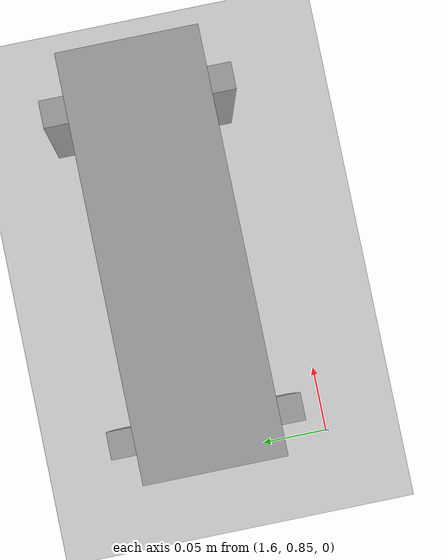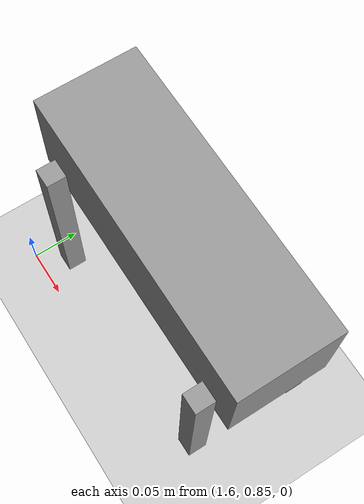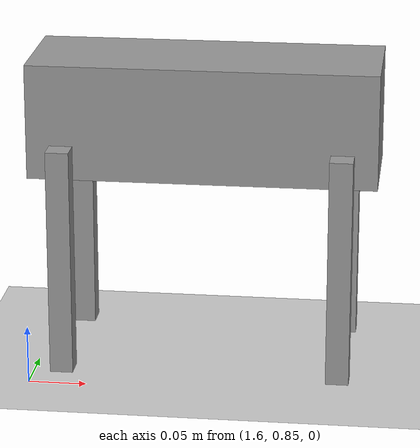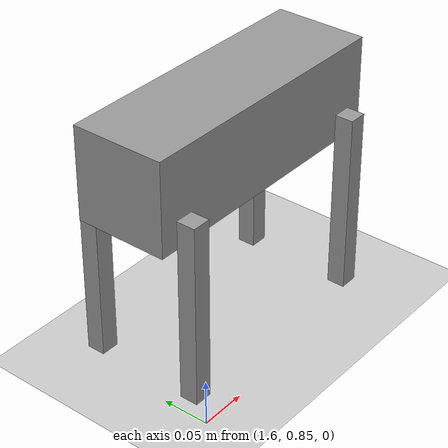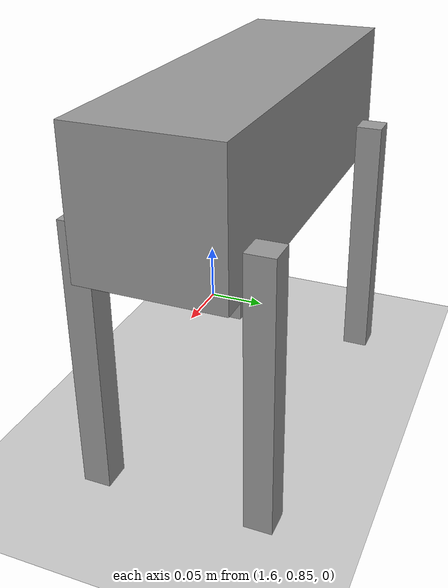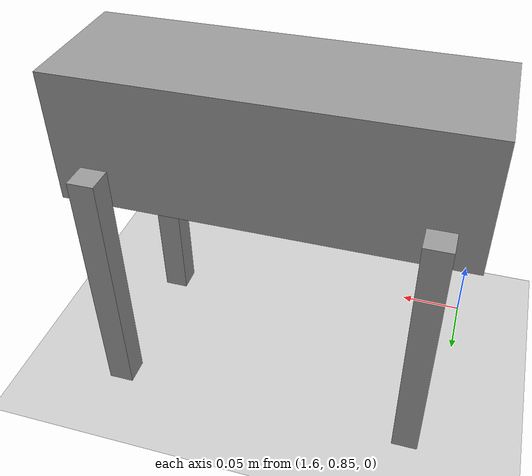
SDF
<sdf version="1.6">
 <world name="default">
  <model name="ground_plane">
   <static>1</static>
   <link name="link">
    <collision name="collision">
     <geometry><plane><normal>0 0 1</normal><size>100 100</size></plane></geometry>
     <surface>
      <contact><collide_bitmask>65535</collide_bitmask></contact>
      <friction><ode><mu>100</mu><mu2>50</mu2></ode></friction>
     </surface>
    </collision>
    <visual name="visual">
     <cast_shadows>0</cast_shadows>
     <geometry><plane><normal>0 0 1</normal><size>100 100</size></plane></geometry>
     <material>
      <script><uri>file://media/materials/scripts/gazebo.material</uri><name>Gazebo/Grey</name></script>
     </material>
    </visual>
   </link>
  </model>
  <model name="robot-dog_clone">
   <link name="link_1">
    <pose>-2.67488 -4.128 0.54 0 -0 0</pose>
    <inertial>
     <mass>1</mass>
     <inertia>
      <ixx>0.166667</ixx>
      <ixy>0</ixy>
      <ixz>0</ixz>
      <iyy>0.166667</iyy>
      <iyz>0</iyz>
      <izz>0.166667</izz>
     </inertia>
    </inertial>
    <visual name="visual">
     <geometry><box><size>0.3 0.1 0.1</size></box></geometry>
     <material>
      <lighting>1</lighting>
      <script><uri>file://media/materials/scripts/gazebo.material</uri><name>Gazebo/Grey</name></script>
      <shader type="pixel"><normal_map>__default__</normal_map></shader>
      <ambient>0.3 0.3 0.3 1</ambient>
      <diffuse>0.7 0.7 0.7 1</diffuse>
      <specular>0.01 0.01 0.01 1</specular>
      <emissive>0 0 0 1</emissive>
     </material>
    </visual>
    <collision name="collision">
     <geometry><box><size>0.3 0.1 0.1</size></box></geometry>
     <surface>
      <friction>
       <ode><mu>1</mu><mu2>1</mu2><fdir1>0 0 0</fdir1><slip1>0</slip1><slip2>0</slip2></ode>
       <torsional>
        <coefficient>1</coefficient>
        <patch_radius>0</patch_radius>
        <surface_radius>0</surface_radius>
        <use_patch_radius>1</use_patch_radius>
        <ode><slip>0</slip></ode>
       </torsional>
      </friction>
      <bounce><restitution_coefficient>0</restitution_coefficient><threshold>1e+06</threshold></bounce>
      <contact>
       <collide_without_contact>0</collide_without_contact>
       <collide_without_contact_bitmask>1</collide_without_contact_bitmask>
       <collide_bitmask>1</collide_bitmask>
       <ode>
        <soft_cfm>0</soft_cfm>
        <soft_erp>0.2</soft_erp>
        <kp>1e+13</kp>
        <kd>1</kd>
        <max_vel>0.01</max_vel>
        <min_depth>0</min_depth>
       </ode>
       <bullet>
        <split_impulse>1</split_impulse>
        <split_impulse_penetration_threshold>-0.01</split_impulse_penetration_threshold>
        <soft_cfm>0</soft_cfm>
        <soft_erp>0.2</soft_erp>
        <kp>1e+13</kp>
        <kd>1</kd>
       </bullet>
      </contact>
     </surface>
    </collision>
   </link>
   <link name="link_2">
    <pose>-2.55488 -4.068 0.42 3.14159 1.57079 3.14159</pose>
    <inertial>
     <mass>1</mass>
     <inertia>
      <ixx>0.166667</ixx>
      <ixy>0</ixy>
      <ixz>0</ixz>
      <iyy>0.166667</iyy>
      <iyz>0</iyz>
      <izz>0.166667</izz>
     </inertia>
    </inertial>
    <visual name="visual">
     <geometry><box><size>0.2 0.02 0.02</size></box></geometry>
     <material>
      <lighting>1</lighting>
      <script><uri>file://media/materials/scripts/gazebo.material</uri><name>Gazebo/Grey</name></script>
      <shader type="pixel"><normal_map>__default__</normal_map></shader>
      <ambient>0.3 0.3 0.3 1</ambient>
      <diffuse>0.7 0.7 0.7 1</diffuse>
      <specular>0.01 0.01 0.01 1</specular>
      <emissive>0 0 0 1</emissive>
     </material>
    </visual>
    <collision name="collision">
     <geometry><box><size>0.2 0.02 0.02</size></box></geometry>
     <surface>
      <friction>
       <ode><mu>1</mu><mu2>1</mu2><fdir1>0 0 0</fdir1><slip1>0</slip1><slip2>0</slip2></ode>
       <torsional>
        <coefficient>1</coefficient>
        <patch_radius>0</patch_radius>
        <surface_radius>0</surface_radius>
        <use_patch_radius>1</use_patch_radius>
        <ode><slip>0</slip></ode>
       </torsional>
      </friction>
      <bounce><restitution_coefficient>0</restitution_coefficient><threshold>1e+06</threshold></bounce>
      <contact>
       <collide_without_contact>0</collide_without_contact>
       <collide_without_contact_bitmask>1</collide_without_contact_bitmask>
       <collide_bitmask>1</collide_bitmask>
       <ode>
        <soft_cfm>0</soft_cfm>
        <soft_erp>0.2</soft_erp>
        <kp>1e+13</kp>
        <kd>1</kd>
        <max_vel>0.01</max_vel>
        <min_depth>0</min_depth>
       </ode>
       <bullet>
        <split_impulse>1</split_impulse>
        <split_impulse_penetration_threshold>-0.01</split_impulse_penetration_threshold>
        <soft_cfm>0</soft_cfm>
        <soft_erp>0.2</soft_erp>
        <kp>1e+13</kp>
        <kd>1</kd>
       </bullet>
      </contact>
     </surface>
    </collision>
   </link>
   <link name="link_2_clone">
    <pose>-2.79488 -4.068 0.42 3.14159 1.57079 3.14159</pose>
    <inertial>
     <mass>1</mass>
     <inertia>
      <ixx>0.166667</ixx>
      <ixy>0</ixy>
      <ixz>0</ixz>
      <iyy>0.166667</iyy>
      <iyz>0</iyz>
      <izz>0.166667</izz>
     </inertia>
    </inertial>
    <visual name="visual">
     <geometry><box><size>0.2 0.02 0.02</size></box></geometry>
     <material>
      <lighting>1</lighting>
      <script><uri>file://media/materials/scripts/gazebo.material</uri><name>Gazebo/Grey</name></script>
      <shader type="pixel"><normal_map>__default__</normal_map></shader>
      <ambient>0.3 0.3 0.3 1</ambient>
      <diffuse>0.7 0.7 0.7 1</diffuse>
      <specular>0.01 0.01 0.01 1</specular>
      <emissive>0 0 0 1</emissive>
     </material>
    </visual>
    <collision name="collision">
     <geometry><box><size>0.2 0.02 0.02</size></box></geometry>
     <surface>
      <friction>
       <ode><mu>1</mu><mu2>1</mu2><fdir1>0 0 0</fdir1><slip1>0</slip1><slip2>0</slip2></ode>
       <torsional>
        <coefficient>1</coefficient>
        <patch_radius>0</patch_radius>
        <surface_radius>0</surface_radius>
        <use_patch_radius>1</use_patch_radius>
        <ode><slip>0</slip></ode>
       </torsional>
      </friction>
      <bounce><restitution_coefficient>0</restitution_coefficient><threshold>1e+06</threshold></bounce>
      <contact>
       <collide_without_contact>0</collide_without_contact>
       <collide_without_contact_bitmask>1</collide_without_contact_bitmask>
       <collide_bitmask>1</collide_bitmask>
       <ode>
        <soft_cfm>0</soft_cfm>
        <soft_erp>0.2</soft_erp>
        <kp>1e+13</kp>
        <kd>1</kd>
        <max_vel>0.01</max_vel>
        <min_depth>0</min_depth>
       </ode>
       <bullet>
        <split_impulse>1</split_impulse>
        <split_impulse_penetration_threshold>-0.01</split_impulse_penetration_threshold>
        <soft_cfm>0</soft_cfm>
        <soft_erp>0.2</soft_erp>
        <kp>1e+13</kp>
        <kd>1</kd>
       </bullet>
      </contact>
     </surface>
    </collision>
   </link>
   <link name="link_2_clone_0">
    <pose>-2.55488 -4.188 0.42 0 1.57079 0</pose>
    <inertial>
     <mass>1</mass>
     <inertia>
      <ixx>0.166667</ixx>
      <ixy>0</ixy>
      <ixz>0</ixz>
      <iyy>0.166667</iyy>
      <iyz>0</iyz>
      <izz>0.166667</izz>
     </inertia>
    </inertial>
    <visual name="visual">
     <geometry><box><size>0.2 0.02 0.02</size></box></geometry>
     <material>
      <lighting>1</lighting>
      <script><uri>file://media/materials/scripts/gazebo.material</uri><name>Gazebo/Grey</name></script>
      <shader type="pixel"><normal_map>__default__</normal_map></shader>
      <ambient>0.3 0.3 0.3 1</ambient>
      <diffuse>0.7 0.7 0.7 1</diffuse>
      <specular>0.01 0.01 0.01 1</specular>
      <emissive>0 0 0 1</emissive>
     </material>
    </visual>
    <collision name="collision">
     <geometry><box><size>0.2 0.02 0.02</size></box></geometry>
     <surface>
      <friction>
       <ode><mu>1</mu><mu2>1</mu2><fdir1>0 0 0</fdir1><slip1>0</slip1><slip2>0</slip2></ode>
       <torsional>
        <coefficient>1</coefficient>
        <patch_radius>0</patch_radius>
        <surface_radius>0</surface_radius>
        <use_patch_radius>1</use_patch_radius>
        <ode><slip>0</slip></ode>
       </torsional>
      </friction>
      <bounce><restitution_coefficient>0</restitution_coefficient><threshold>1e+06</threshold></bounce>
      <contact>
       <collide_without_contact>0</collide_without_contact>
       <collide_without_contact_bitmask>1</collide_without_contact_bitmask>
       <collide_bitmask>1</collide_bitmask>
       <ode>
        <soft_cfm>0</soft_cfm>
        <soft_erp>0.2</soft_erp>
        <kp>1e+13</kp>
        <kd>1</kd>
        <max_vel>0.01</max_vel>
        <min_depth>0</min_depth>
       </ode>
       <bullet>
        <split_impulse>1</split_impulse>
        <split_impulse_penetration_threshold>-0.01</split_impulse_penetration_threshold>
        <soft_cfm>0</soft_cfm>
        <soft_erp>0.2</soft_erp>
        <kp>1e+13</kp>
        <kd>1</kd>
       </bullet>
      </contact>
     </surface>
    </collision>
   </link>
   <link name="link_2_clone_1">
    <pose>-2.79488 -4.188 0.42 0 1.57079 0</pose>
    <inertial>
     <mass>1</mass>
     <inertia>
      <ixx>0.166667</ixx>
      <ixy>0</ixy>
      <ixz>0</ixz>
      <iyy>0.166667</iyy>
      <iyz>0</iyz>
      <izz>0.166667</izz>
     </inertia>
    </inertial>
    <visual name="visual">
     <geometry><box><size>0.2 0.02 0.02</size></box></geometry>
     <material>
      <lighting>1</lighting>
      <script><uri>file://media/materials/scripts/gazebo.material</uri><name>Gazebo/Grey</name></script>
      <shader type="pixel"><normal_map>__default__</normal_map></shader>
      <ambient>0.3 0.3 0.3 1</ambient>
      <diffuse>0.7 0.7 0.7 1</diffuse>
      <specular>0.01 0.01 0.01 1</specular>
      <emissive>0 0 0 1</emissive>
     </material>
    </visual>
    <collision name="collision">
     <geometry><box><size>0.2 0.02 0.02</size></box></geometry>
     <surface>
      <friction>
       <ode><mu>1</mu><mu2>1</mu2><fdir1>0 0 0</fdir1><slip1>0</slip1><slip2>0</slip2></ode>
       <torsional>
        <coefficient>1</coefficient>
        <patch_radius>0</patch_radius>
        <surface_radius>0</surface_radius>
        <use_patch_radius>1</use_patch_radius>
        <ode><slip>0</slip></ode>
       </torsional>
      </friction>
      <bounce><restitution_coefficient>0</restitution_coefficient><threshold>1e+06</threshold></bounce>
      <contact>
       <collide_without_contact>0</collide_without_contact>
       <collide_without_contact_bitmask>1</collide_without_contact_bitmask>
       <collide_bitmask>1</collide_bitmask>
       <ode>
        <soft_cfm>0</soft_cfm>
        <soft_erp>0.2</soft_erp>
        <kp>1e+13</kp>
        <kd>1</kd>
        <max_vel>0.01</max_vel>
        <min_depth>0</min_depth>
       </ode>
       <bullet>
        <split_impulse>1</split_impulse>
        <split_impulse_penetration_threshold>-0.01</split_impulse_penetration_threshold>
        <soft_cfm>0</soft_cfm>
        <soft_erp>0.2</soft_erp>
        <kp>1e+13</kp>
        <kd>1</kd>
       </bullet>
      </contact>
     </surface>
    </collision>
   </link>
   <joint name="link_1_JOINT_1" type="revolute">
    <parent>link_1</parent>
    <child>link_2</child>
    <pose>-0.09 0 0 0 -0 0</pose>
    <axis>
     <xyz>0 1 0</xyz>
     <use_parent_model_frame>0</use_parent_model_frame>
     <limit>
      <lower>-1.79769e+308</lower>
      <upper>1.79769e+308</upper>
      <effort>-1</effort>
      <velocity>-1</velocity>
     </limit>
     <dynamics>
      <spring_reference>0</spring_reference>
      <spring_stiffness>0</spring_stiffness>
      <damping>0</damping>
     </dynamics>
    </axis>
    <physics>
     <ode><limit><cfm>0</cfm><erp>0.2</erp></limit><suspension><cfm>0</cfm><erp>0.2</erp></suspension></ode>
    </physics>
   </joint>
   <joint name="link_1_JOINT_2" type="revolute">
    <parent>link_1</parent>
    <child>link_2_clone</child>
    <pose>-0.09 0 0 0 -0 0</pose>
    <axis>
     <xyz>0 1 0</xyz>
     <use_parent_model_frame>0</use_parent_model_frame>
     <limit>
      <lower>-1.79769e+308</lower>
      <upper>1.79769e+308</upper>
      <effort>-1</effort>
      <velocity>-1</velocity>
     </limit>
     <dynamics>
      <spring_reference>0</spring_reference>
      <spring_stiffness>0</spring_stiffness>
      <damping>0</damping>
     </dynamics>
    </axis>
    <physics>
     <ode><limit><cfm>0</cfm><erp>0.2</erp></limit><suspension><cfm>0</cfm><erp>0.2</erp></suspension></ode>
    </physics>
   </joint>
   <joint name="link_1_JOINT_3" type="revolute">
    <parent>link_1</parent>
    <child>link_2_clone_0</child>
    <pose>-0.09 0 0 0 -0 0</pose>
    <axis>
     <xyz>0 1 0</xyz>
     <use_parent_model_frame>0</use_parent_model_frame>
     <limit>
      <lower>-1.79769e+308</lower>
      <upper>1.79769e+308</upper>
      <effort>-1</effort>
      <velocity>-1</velocity>
     </limit>
     <dynamics>
      <spring_reference>0</spring_reference>
      <spring_stiffness>0</spring_stiffness>
      <damping>0</damping>
     </dynamics>
    </axis>
    <physics>
     <ode><limit><cfm>0</cfm><erp>0.2</erp></limit><suspension><cfm>0</cfm><erp>0.2</erp></suspension></ode>
    </physics>
   </joint>
   <joint name="link_1_JOINT_4" type="revolute">
    <parent>link_1</parent>
    <child>link_2_clone_1</child>
    <pose>-0.09 0 0 0 -0 0</pose>
    <axis>
     <xyz>0 1 0</xyz>
     <use_parent_model_frame>0</use_parent_model_frame>
     <limit>
      <lower>-1.79769e+308</lower>
      <upper>1.79769e+308</upper>
      <effort>-1</effort>
      <velocity>-1</velocity>
     </limit>
     <dynamics>
      <spring_reference>0</spring_reference>
      <spring_stiffness>0</spring_stiffness>
      <damping>0</damping>
     </dynamics>
    </axis>
    <physics>
     <ode><limit><cfm>0</cfm><erp>0.2</erp></limit><suspension><cfm>0</cfm><erp>0.2</erp></suspension></ode>
    </physics>
   </joint>
   <static>0</static>
   <pose>4.4139 5.07468 -0.320002 0 1e-06 0.001228</pose>
  </model>
 </world>
</sdf>
